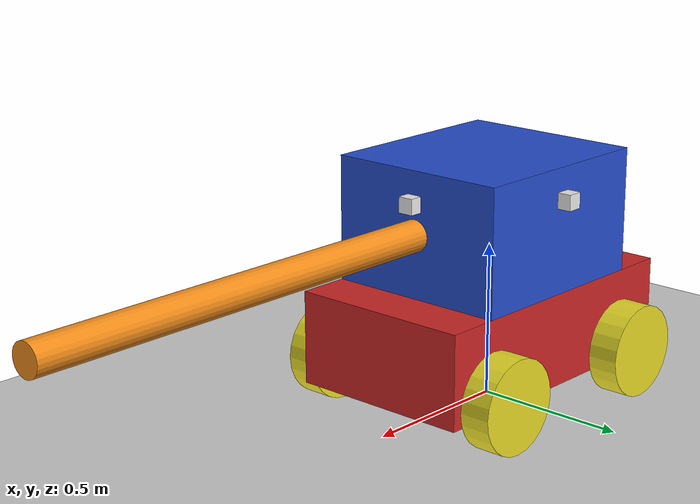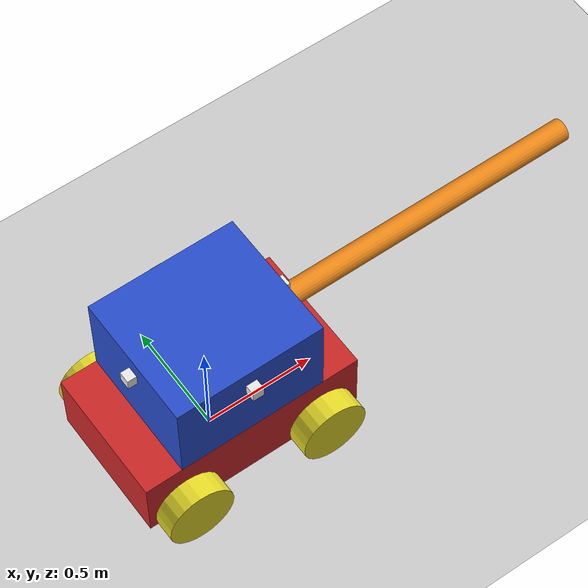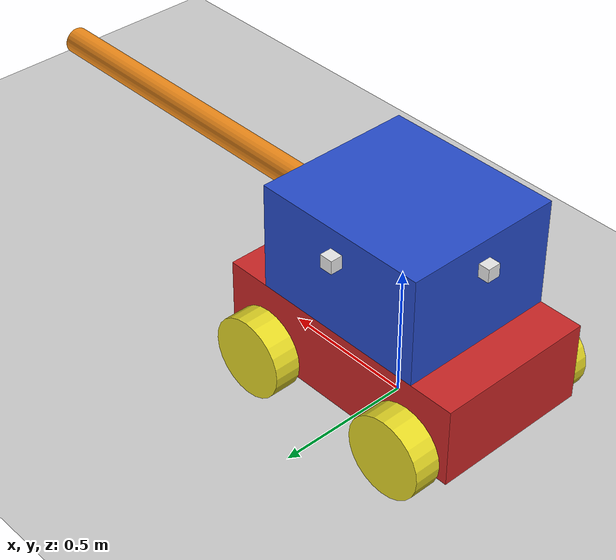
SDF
<sdf version="1.7">
 <world name="default">
  <light name="sun" type="directional">
   <pose>0 0 10 0 -0 0</pose>
   <diffuse>0.8 0.8 0.8 1</diffuse>
   <specular>0.2 0.2 0.2 1</specular>
   <attenuation>
    <range>1000</range>
    <constant>0.9</constant>
    <linear>0.01</linear>
    <quadratic>0.001</quadratic>
   </attenuation>
   <direction>-0.5 0.1 -0.9</direction>
   <spot><inner_angle>0</inner_angle><outer_angle>0</outer_angle><falloff>0</falloff></spot>
  </light>
  <model name="ground_plane">
   <static>1</static>
   <link name="link">
    <collision name="collision">
     <geometry><plane><normal>0 0 1</normal><size>100 100</size></plane></geometry>
     <surface>
      <contact><collide_bitmask>65535</collide_bitmask></contact>
      <friction><ode><mu>100</mu><mu2>50</mu2></ode></friction>
     </surface>
    </collision>
    <visual name="visual">
     <cast_shadows>0</cast_shadows>
     <geometry><plane><normal>0 0 1</normal><size>100 100</size></plane></geometry>
     <material>
      <script><uri>file://media/materials/scripts/gazebo.material</uri><name>Gazebo/Grey</name></script>
     </material>
    </visual>
   </link>
  </model>
  <gravity>0 0 -9.8</gravity>
  <magnetic_field>6e-06 2.3e-05 -4.2e-05</magnetic_field>
  <atmosphere type="adiabatic"/>
  <physics type="ode">
   <max_step_size>0.001</max_step_size>
   <real_time_factor>1</real_time_factor>
   <real_time_update_rate>1000</real_time_update_rate>
  </physics>
  <scene><ambient>0.4 0.4 0.4 1</ambient><background>0.7 0.7 0.7 1</background><shadows>1</shadows></scene>
  <audio><device>default</device></audio>
  <spherical_coordinates>
   <surface_model>EARTH_WGS84</surface_model>
   <latitude_deg>0</latitude_deg>
   <longitude_deg>0</longitude_deg>
   <elevation>0</elevation>
   <heading_deg>0</heading_deg>
  </spherical_coordinates>
  <model name="auto_turret_vehicle">
   <link name="dummy">
    <inertial>
     <mass>487.8</mass>
     <inertia><ixx>18.2925</ixx><ixy>0</ixy><ixz>0</ixz><iyy>44.3085</iyy><iyz>0</iyz><izz>55.284</izz></inertia>
    </inertial>
    <collision name="dummy_fixed_joint_lump__body_link_collision">
     <geometry><box><size>1 0.6 0.3</size></box></geometry>
     <surface><friction><ode><mu>0.2</mu><mu2>0.2</mu2></ode></friction></surface>
    </collision>
    <visual name="dummy_fixed_joint_lump__body_link_visual">
     <geometry><box><size>1 0.6 0.3</size></box></geometry>
     <material>
      <script><name>Gazebo/Red</name><uri>file://media/materials/scripts/gazebo.material</uri></script>
     </material>
    </visual>
   </link>
   <joint name="turret_joint" type="revolute">
    <pose relative_to="dummy">0 0 0.35 0 -0 0</pose>
    <parent>dummy</parent>
    <child>turret_link</child>
    <axis>
     <xyz>0 0 1</xyz>
     <limit><lower>-1e+16</lower><upper>1e+16</upper></limit>
     <dynamics><spring_reference>0</spring_reference><spring_stiffness>0</spring_stiffness></dynamics>
    </axis>
   </joint>
   <link name="turret_link">
    <pose relative_to="turret_joint">0 0 0 0 -0 0</pose>
    <inertial>
     <pose>0.265823 0 0.035443 0 -0 0</pose>
     <mass>183.506</mass>
     <inertia>
      <ixx>12.449</ixx>
      <ixy>4.6696e-09</ixy>
      <ixz>1.72891</ixz>
      <iyy>52.3846</iyy>
      <iyz>0</iyz>
      <izz>61.5549</izz>
     </inertia>
    </inertial>
    <collision name="turret_link_collision">
     <geometry><box><size>0.666667 0.6 0.2</size></box></geometry>
    </collision>
    <collision name="turret_link_fixed_joint_lump__front_camera_link_collision_1">
     <pose>0.35 0 0.1 0 -0 0</pose>
     <geometry><box><size>0.05 0.05 0.05</size></box></geometry>
     <surface><friction><ode><mu>0.2</mu><mu2>0.2</mu2></ode></friction></surface>
    </collision>
    <collision name="turret_link_fixed_joint_lump__gun_link_collision_2">
     <pose>1 0 0 0 -0 0</pose>
     <geometry><box><size>1.5 0.1 0.1</size></box></geometry>
    </collision>
    <collision name="turret_link_fixed_joint_lump__left_camera_link_collision_3">
     <pose>0 0.32 0.1 0 -0 1.5708</pose>
     <geometry><box><size>0.05 0.05 0.05</size></box></geometry>
     <surface><friction><ode><mu>0.2</mu><mu2>0.2</mu2></ode></friction></surface>
    </collision>
    <collision name="turret_link_fixed_joint_lump__rear_camera_link_collision_4">
     <pose>-0.35 0 0.1 0 -0 3.14159</pose>
     <geometry><box><size>0.05 0.05 0.05</size></box></geometry>
     <surface><friction><ode><mu>0.2</mu><mu2>0.2</mu2></ode></friction></surface>
    </collision>
    <collision name="turret_link_fixed_joint_lump__right_camera_link_collision_5">
     <pose>0 -0.32 0.1 0 0 -1.5708</pose>
     <geometry><box><size>0.05 0.05 0.05</size></box></geometry>
     <surface><friction><ode><mu>0.2</mu><mu2>0.2</mu2></ode></friction></surface>
    </collision>
    <visual name="turret_link_visual">
     <geometry><box><size>0.666667 0.6 0.4</size></box></geometry>
     <material>
      <script><name>Gazebo/Blue</name><uri>file://media/materials/scripts/gazebo.material</uri></script>
     </material>
    </visual>
    <visual name="turret_link_fixed_joint_lump__front_camera_link_visual_1">
     <pose>0.35 0 0.1 0 -0 0</pose>
     <geometry><box><size>0.05 0.05 0.05</size></box></geometry>
     <material>
      <script><name>Gazebo/White</name><uri>file://media/materials/scripts/gazebo.material</uri></script>
     </material>
    </visual>
    <visual name="turret_link_fixed_joint_lump__gun_link_visual_2">
     <pose>1 0 0 3.14159 1.57079 3.14159</pose>
     <geometry><cylinder><length>1.5</length><radius>0.05</radius></cylinder></geometry>
     <material>
      <script><name>Gazebo/Orange</name><uri>file://media/materials/scripts/gazebo.material</uri></script>
     </material>
    </visual>
    <visual name="turret_link_fixed_joint_lump__left_camera_link_visual_3">
     <pose>0 0.32 0.1 0 -0 1.5708</pose>
     <geometry><box><size>0.05 0.05 0.05</size></box></geometry>
     <material>
      <script><name>Gazebo/White</name><uri>file://media/materials/scripts/gazebo.material</uri></script>
     </material>
    </visual>
    <visual name="turret_link_fixed_joint_lump__rear_camera_link_visual_4">
     <pose>-0.35 0 0.1 0 -0 3.14159</pose>
     <geometry><box><size>0.05 0.05 0.05</size></box></geometry>
     <material>
      <script><name>Gazebo/White</name><uri>file://media/materials/scripts/gazebo.material</uri></script>
     </material>
    </visual>
    <visual name="turret_link_fixed_joint_lump__right_camera_link_visual_5">
     <pose>0 -0.32 0.1 0 0 -1.5708</pose>
     <geometry><box><size>0.05 0.05 0.05</size></box></geometry>
     <material>
      <script><name>Gazebo/White</name><uri>file://media/materials/scripts/gazebo.material</uri></script>
     </material>
    </visual>
    <sensor name="front_camera" type="camera">
     <visualize>1</visualize>
     <update_rate>10</update_rate>
     <camera>
      <horizontal_fov>1.5702</horizontal_fov>
      <image><format>R8G8B8</format><width>640</width><height>480</height></image>
      <clip><near>0.05</near><far>300</far></clip>
     </camera>
     <plugin name="front_camera_controller" filename="libgazebo_ros_camera.so">
      <imageTopicName>front_camera_image_raw</imageTopicName>
      <cameraInfoTopicName>front_camera_info</cameraInfoTopicName>
      <frame_name>front_camera_link_optical</frame_name>
     </plugin>
     <pose>0.35 0 0.1 0 -0 0</pose>
    </sensor>
    <sensor name="left_camera" type="camera">
     <visualize>1</visualize>
     <update_rate>10</update_rate>
     <camera>
      <horizontal_fov>1.5702</horizontal_fov>
      <image><format>R8G8B8</format><width>640</width><height>480</height></image>
      <clip><near>0.05</near><far>300</far></clip>
     </camera>
     <plugin name="left_camera_controller" filename="libgazebo_ros_camera.so">
      <imageTopicName>left_camera_image_raw</imageTopicName>
      <cameraInfoTopicName>left_camera_info</cameraInfoTopicName>
      <frame_name>left_camera_link_optical</frame_name>
     </plugin>
     <pose>0 0.32 0.1 0 -0 1.5708</pose>
    </sensor>
    <sensor name="rear_camera" type="camera">
     <visualize>1</visualize>
     <update_rate>10</update_rate>
     <camera>
      <horizontal_fov>1.5702</horizontal_fov>
      <image><format>R8G8B8</format><width>640</width><height>480</height></image>
      <clip><near>0.05</near><far>300</far></clip>
     </camera>
     <plugin name="rear_camera_controller" filename="libgazebo_ros_camera.so">
      <imageTopicName>rear_camera_image_raw</imageTopicName>
      <cameraInfoTopicName>rear_camera_info</cameraInfoTopicName>
      <frame_name>rear_camera_link_optical</frame_name>
     </plugin>
     <pose>-0.35 0 0.1 0 -0 3.14159</pose>
    </sensor>
    <sensor name="right_camera" type="camera">
     <visualize>1</visualize>
     <update_rate>10</update_rate>
     <camera>
      <horizontal_fov>1.5702</horizontal_fov>
      <image><format>R8G8B8</format><width>640</width><height>480</height></image>
      <clip><near>0.05</near><far>300</far></clip>
     </camera>
     <plugin name="right_camera_controller" filename="libgazebo_ros_camera.so">
      <imageTopicName>right_camera_image_raw</imageTopicName>
      <cameraInfoTopicName>right_camera_info</cameraInfoTopicName>
      <frame_name>right_camera_link_optical</frame_name>
     </plugin>
     <pose>0 -0.32 0.1 0 0 -1.5708</pose>
    </sensor>
   </link>
   <joint name="wheel1_joint" type="revolute">
    <pose relative_to="dummy">-0.32 -0.35 -0.1 0 -0 0</pose>
    <parent>dummy</parent>
    <child>wheel1_link</child>
    <axis>
     <xyz>0 1 0</xyz>
     <limit><effort>1000</effort><velocity>1000</velocity><lower>-1e+16</lower><upper>1e+16</upper></limit>
     <dynamics>
      <damping>1</damping>
      <friction>1</friction>
      <spring_reference>0</spring_reference>
      <spring_stiffness>0</spring_stiffness>
     </dynamics>
    </axis>
   </joint>
   <link name="wheel1_link">
    <pose relative_to="wheel1_joint">0 0 0 0 -0 0</pose>
    <inertial>
     <mass>19.1559</mass>
     <inertia>
      <ixx>0.123715</ixx>
      <ixy>0</ixy>
      <ixz>0</ixz>
      <iyy>0.123715</iyy>
      <iyz>0</iyz>
      <izz>0.215503</izz>
     </inertia>
    </inertial>
    <collision name="wheel1_link_collision">
     <pose>0 0 0 1.57079 -0 0</pose>
     <geometry><cylinder><length>0.1</length><radius>0.15</radius></cylinder></geometry>
     <surface><friction><ode><mu>0.2</mu><mu2>0.2</mu2></ode></friction></surface>
    </collision>
    <visual name="wheel1_link_visual">
     <pose>0 0 0 1.57079 -0 0</pose>
     <geometry><cylinder><length>0.1</length><radius>0.15</radius></cylinder></geometry>
     <material>
      <script><name>Gazebo/Yellow</name><uri>file://media/materials/scripts/gazebo.material</uri></script>
     </material>
    </visual>
   </link>
   <joint name="wheel2_joint" type="revolute">
    <pose relative_to="dummy">-0.32 0.35 -0.1 0 -0 0</pose>
    <parent>dummy</parent>
    <child>wheel2_link</child>
    <axis>
     <xyz>0 1 0</xyz>
     <limit><effort>1000</effort><velocity>1000</velocity><lower>-1e+16</lower><upper>1e+16</upper></limit>
     <dynamics>
      <damping>1</damping>
      <friction>1</friction>
      <spring_reference>0</spring_reference>
      <spring_stiffness>0</spring_stiffness>
     </dynamics>
    </axis>
   </joint>
   <link name="wheel2_link">
    <pose relative_to="wheel2_joint">0 0 0 0 -0 0</pose>
    <inertial>
     <mass>19.1559</mass>
     <inertia>
      <ixx>0.123715</ixx>
      <ixy>0</ixy>
      <ixz>0</ixz>
      <iyy>0.123715</iyy>
      <iyz>0</iyz>
      <izz>0.215503</izz>
     </inertia>
    </inertial>
    <collision name="wheel2_link_collision">
     <pose>0 0 0 1.57079 -0 0</pose>
     <geometry><cylinder><length>0.1</length><radius>0.15</radius></cylinder></geometry>
     <surface><friction><ode><mu>0.2</mu><mu2>0.2</mu2></ode></friction></surface>
    </collision>
    <visual name="wheel2_link_visual">
     <pose>0 0 0 1.57079 -0 0</pose>
     <geometry><cylinder><length>0.1</length><radius>0.15</radius></cylinder></geometry>
     <material>
      <script><name>Gazebo/Yellow</name><uri>file://media/materials/scripts/gazebo.material</uri></script>
     </material>
    </visual>
   </link>
   <joint name="wheel3_joint" type="revolute">
    <pose relative_to="dummy">0.32 -0.35 -0.1 0 -0 0</pose>
    <parent>dummy</parent>
    <child>wheel3_link</child>
    <axis>
     <xyz>0 1 0</xyz>
     <limit><effort>1000</effort><velocity>1000</velocity><lower>-1e+16</lower><upper>1e+16</upper></limit>
     <dynamics>
      <damping>1</damping>
      <friction>1</friction>
      <spring_reference>0</spring_reference>
      <spring_stiffness>0</spring_stiffness>
     </dynamics>
    </axis>
   </joint>
   <link name="wheel3_link">
    <pose relative_to="wheel3_joint">0 0 0 0 -0 0</pose>
    <inertial>
     <mass>19.1559</mass>
     <inertia>
      <ixx>0.123715</ixx>
      <ixy>0</ixy>
      <ixz>0</ixz>
      <iyy>0.123715</iyy>
      <iyz>0</iyz>
      <izz>0.215503</izz>
     </inertia>
    </inertial>
    <collision name="wheel3_link_collision">
     <pose>0 0 0 1.57079 -0 0</pose>
     <geometry><cylinder><length>0.1</length><radius>0.15</radius></cylinder></geometry>
     <surface><friction><ode><mu>0.2</mu><mu2>0.2</mu2></ode></friction></surface>
    </collision>
    <visual name="wheel3_link_visual">
     <pose>0 0 0 1.57079 -0 0</pose>
     <geometry><cylinder><length>0.1</length><radius>0.15</radius></cylinder></geometry>
     <material>
      <script><name>Gazebo/Yellow</name><uri>file://media/materials/scripts/gazebo.material</uri></script>
     </material>
    </visual>
   </link>
   <joint name="wheel4_joint" type="revolute">
    <pose relative_to="dummy">0.32 0.35 -0.1 0 -0 0</pose>
    <parent>dummy</parent>
    <child>wheel4_link</child>
    <axis>
     <xyz>0 1 0</xyz>
     <limit><effort>1000</effort><velocity>1000</velocity><lower>-1e+16</lower><upper>1e+16</upper></limit>
     <dynamics>
      <damping>1</damping>
      <friction>1</friction>
      <spring_reference>0</spring_reference>
      <spring_stiffness>0</spring_stiffness>
     </dynamics>
    </axis>
   </joint>
   <link name="wheel4_link">
    <pose relative_to="wheel4_joint">0 0 0 0 -0 0</pose>
    <inertial>
     <mass>19.1559</mass>
     <inertia>
      <ixx>0.123715</ixx>
      <ixy>0</ixy>
      <ixz>0</ixz>
      <iyy>0.123715</iyy>
      <iyz>0</iyz>
      <izz>0.215503</izz>
     </inertia>
    </inertial>
    <collision name="wheel4_link_collision">
     <pose>0 0 0 1.57079 -0 0</pose>
     <geometry><cylinder><length>0.1</length><radius>0.15</radius></cylinder></geometry>
     <surface><friction><ode><mu>0.2</mu><mu2>0.2</mu2></ode></friction></surface>
    </collision>
    <visual name="wheel4_link_visual">
     <pose>0 0 0 1.57079 -0 0</pose>
     <geometry><cylinder><length>0.1</length><radius>0.15</radius></cylinder></geometry>
     <material>
      <script><name>Gazebo/Yellow</name><uri>file://media/materials/scripts/gazebo.material</uri></script>
     </material>
    </visual>
   </link>
   <static>0</static>
   <plugin name="skid_steer_drive" filename="libgazebo_ros_diff_drive.so">
    <num_wheel_pairs>2</num_wheel_pairs>
    <left_joint>wheel4_joint</left_joint>
    <right_joint>wheel3_joint</right_joint>
    <left_joint>wheel2_joint</left_joint>
    <right_joint>wheel1_joint</right_joint>
    <wheel_separation>0.7</wheel_separation>
    <wheel_separation>0.7</wheel_separation>
    <wheel_diameter>0.15</wheel_diameter>
    <wheel_diameter>0.15</wheel_diameter>
    <max_wheel_torque>1000</max_wheel_torque>
    <max_wheel_acceleration>5.0</max_wheel_acceleration>
    <publish_odom>1</publish_odom>
    <publish_odom_tf>1</publish_odom_tf>
    <publish_wheel_tf>1</publish_wheel_tf>
    <odometry_frame>odom</odometry_frame>
    <robot_base_frame>dummy</robot_base_frame>
   </plugin>
   <plugin name="gazebo_ros2_control" filename="libgazebo_ros2_control.so">
    <robot_param>robot_description</robot_param>
    <robot_param_node>robot_state_publisher</robot_param_node>
    <parameters>/home/masenturk/auto_turret/src/mobile_robot/config/turret_config.yaml</parameters>
   </plugin>
   <pose>0.011614 -0.013906 0.249999 1e-06 -2e-06 0.004335</pose>
  </model>
  <light name="user_directional_light_0" type="directional">
   <pose>13.3086 -5.69627 1 0 -0 0</pose>
   <diffuse>0.5 0.5 0.5 1</diffuse>
   <specular>0.1 0.1 0.1 1</specular>
   <direction>0.1 0.1 -0.9</direction>
   <attenuation>
    <range>20</range>
    <constant>0.5</constant>
    <linear>0.01</linear>
    <quadratic>0.001</quadratic>
   </attenuation>
  </light>
  <light name="user_directional_light_1" type="directional">
   <pose>23.6912 3.13971 1 0 -0 0</pose>
   <diffuse>0.5 0.5 0.5 1</diffuse>
   <specular>0.1 0.1 0.1 1</specular>
   <direction>0.1 0.1 -0.9</direction>
   <attenuation>
    <range>20</range>
    <constant>0.5</constant>
    <linear>0.01</linear>
    <quadratic>0.001</quadratic>
   </attenuation>
  </light>
  <light name="user_directional_light_2" type="directional">
   <pose>23.9803 12.999 1 0 -0 0</pose>
   <diffuse>0.5 0.5 0.5 1</diffuse>
   <specular>0.1 0.1 0.1 1</specular>
   <direction>0.1 0.1 -0.9</direction>
   <attenuation>
    <range>20</range>
    <constant>0.5</constant>
    <linear>0.01</linear>
    <quadratic>0.001</quadratic>
   </attenuation>
  </light>
  <light name="user_directional_light_3" type="directional">
   <pose>12.848 14.244 1 0 -0 0</pose>
   <diffuse>0.5 0.5 0.5 1</diffuse>
   <specular>0.1 0.1 0.1 1</specular>
   <direction>0.1 0.1 -0.9</direction>
   <attenuation>
    <range>20</range>
    <constant>0.5</constant>
    <linear>0.01</linear>
    <quadratic>0.001</quadratic>
   </attenuation>
  </light>
  <light name="user_directional_light_4" type="directional">
   <pose>3.75722 12.5546 1 0 -0 0</pose>
   <diffuse>0.5 0.5 0.5 1</diffuse>
   <specular>0.1 0.1 0.1 1</specular>
   <direction>0.1 0.1 -0.9</direction>
   <attenuation>
    <range>20</range>
    <constant>0.5</constant>
    <linear>0.01</linear>
    <quadratic>0.001</quadratic>
   </attenuation>
  </light>
  <light name="user_directional_light_5" type="directional">
   <pose>2.09689 -10.3673 1 0 -0 0</pose>
   <diffuse>0.5 0.5 0.5 1</diffuse>
   <specular>0.1 0.1 0.1 1</specular>
   <direction>0.1 0.1 -0.9</direction>
   <attenuation>
    <range>20</range>
    <constant>0.5</constant>
    <linear>0.01</linear>
    <quadratic>0.001</quadratic>
   </attenuation>
  </light>
  <light name="user_directional_light_6" type="directional">
   <pose>-2.72499 -8.11477 1 0 -0 0</pose>
   <diffuse>0.5 0.5 0.5 1</diffuse>
   <specular>0.1 0.1 0.1 1</specular>
   <direction>0.1 0.1 -0.9</direction>
   <attenuation>
    <range>20</range>
    <constant>0.5</constant>
    <linear>0.01</linear>
    <quadratic>0.001</quadratic>
   </attenuation>
  </light>
  <light name="user_directional_light_7" type="directional">
   <pose>-7.29925 -4.71131 1 0 -0 0</pose>
   <diffuse>0.5 0.5 0.5 1</diffuse>
   <specular>0.1 0.1 0.1 1</specular>
   <direction>0.1 0.1 -0.9</direction>
   <attenuation>
    <range>20</range>
    <constant>0.5</constant>
    <linear>0.01</linear>
    <quadratic>0.001</quadratic>
   </attenuation>
  </light>
  <light name="user_directional_light_8" type="directional">
   <pose>19.3797 6.71438 1 0 -0 0</pose>
   <diffuse>0.5 0.5 0.5 1</diffuse>
   <specular>0.1 0.1 0.1 1</specular>
   <direction>0.1 0.1 -0.9</direction>
   <attenuation>
    <range>20</range>
    <constant>0.5</constant>
    <linear>0.01</linear>
    <quadratic>0.001</quadratic>
   </attenuation>
  </light>
 </world>
</sdf>
